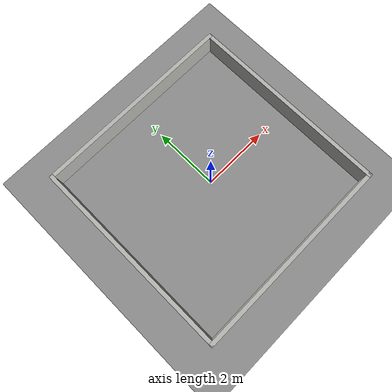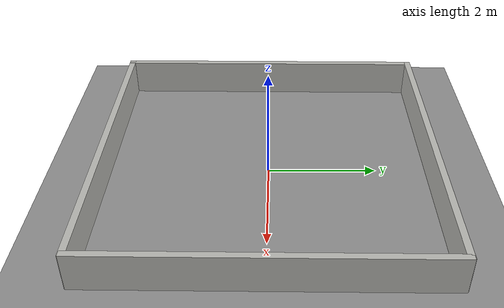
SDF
<?xml version="1.0"?>
<sdf version='1.7'>
  <world name='retrain_stage0_empty'>
    <light name='sun' type='directional'><cast_shadows>1</cast_shadows><pose>0 0 10 0 0 0</pose><diffuse>0.8 0.8 0.8 1</diffuse><specular>0.2 0.2 0.2 1</specular><attenuation><range>1000</range><constant>0.9</constant><linear>0.01</linear><quadratic>0.001</quadratic></attenuation><direction>-0.5 0.1 -0.9</direction></light>
    <model name='ground_plane'><static>true</static><link name='link'><collision name='collision'><geometry><plane><normal>0 0 1</normal><size>100 100</size></plane></geometry><surface><friction><ode><mu>80</mu><mu2>80</mu2></ode></friction><bounce><restitution_coefficient>0</restitution_coefficient><threshold>1000000</threshold></bounce><contact><ode><soft_cfm>0.001</soft_cfm><soft_erp>0.2</soft_erp><kp>1000000</kp><kd>10</kd><max_vel>0.05</max_vel><min_depth>0.001</min_depth></ode></contact></surface></collision><visual name='visual'><cast_shadows>0</cast_shadows><geometry><plane><normal>0 0 1</normal><size>100 100</size></plane></geometry><material><ambient>0.56 0.56 0.56 1</ambient><diffuse>0.56 0.56 0.56 1</diffuse></material></visual></link></model>
    <gravity>0 0 -9.8</gravity><physics type='ode'><max_step_size>0.001</max_step_size><real_time_factor>1</real_time_factor><real_time_update_rate>1000</real_time_update_rate></physics><scene><ambient>0.45 0.45 0.45 1</ambient><background>0.70 0.72 0.74 1</background><shadows>1</shadows></scene>
    <model name='retrain_north_wall'><static>true</static><pose>0 3.0 0.35 0 0 0</pose><link name='link'><collision name='collision'><geometry><box><size>6.1 0.12 0.70</size></box></geometry><surface><friction><ode><mu>1.0</mu><mu2>1.0</mu2></ode></friction><bounce><restitution_coefficient>0</restitution_coefficient></bounce></surface></collision><visual name='visual'><geometry><box><size>6.1 0.12 0.70</size></box></geometry><material><ambient>0.72 0.72 0.70 1</ambient><diffuse>0.72 0.72 0.70 1</diffuse></material></visual></link></model>
    <model name='retrain_south_wall'><static>true</static><pose>0 -3.0 0.35 0 0 0</pose><link name='link'><collision name='collision'><geometry><box><size>6.1 0.12 0.70</size></box></geometry><surface><friction><ode><mu>1.0</mu><mu2>1.0</mu2></ode></friction><bounce><restitution_coefficient>0</restitution_coefficient></bounce></surface></collision><visual name='visual'><geometry><box><size>6.1 0.12 0.70</size></box></geometry><material><ambient>0.72 0.72 0.70 1</ambient><diffuse>0.72 0.72 0.70 1</diffuse></material></visual></link></model>
    <model name='retrain_east_wall'><static>true</static><pose>3.0 0 0.35 0 0 0</pose><link name='link'><collision name='collision'><geometry><box><size>0.12 6.1 0.70</size></box></geometry><surface><friction><ode><mu>1.0</mu><mu2>1.0</mu2></ode></friction><bounce><restitution_coefficient>0</restitution_coefficient></bounce></surface></collision><visual name='visual'><geometry><box><size>0.12 6.1 0.70</size></box></geometry><material><ambient>0.72 0.72 0.70 1</ambient><diffuse>0.72 0.72 0.70 1</diffuse></material></visual></link></model>
    <model name='retrain_west_wall'><static>true</static><pose>-3.0 0 0.35 0 0 0</pose><link name='link'><collision name='collision'><geometry><box><size>0.12 6.1 0.70</size></box></geometry><surface><friction><ode><mu>1.0</mu><mu2>1.0</mu2></ode></friction><bounce><restitution_coefficient>0</restitution_coefficient></bounce></surface></collision><visual name='visual'><geometry><box><size>0.12 6.1 0.70</size></box></geometry><material><ambient>0.72 0.72 0.70 1</ambient><diffuse>0.72 0.72 0.70 1</diffuse></material></visual></link></model>
    <gui fullscreen='0'><camera name='user_camera'><pose>0 -6.0 5.0 0 0.72 1.5708</pose><view_controller>orbit</view_controller><projection_type>perspective</projection_type></camera></gui>
    <plugin name="gazebo_ros_state" filename="libgazebo_ros_state.so"><ros><namespace></namespace></ros><update_rate>1.0</update_rate></plugin>
  </world>
</sdf>
